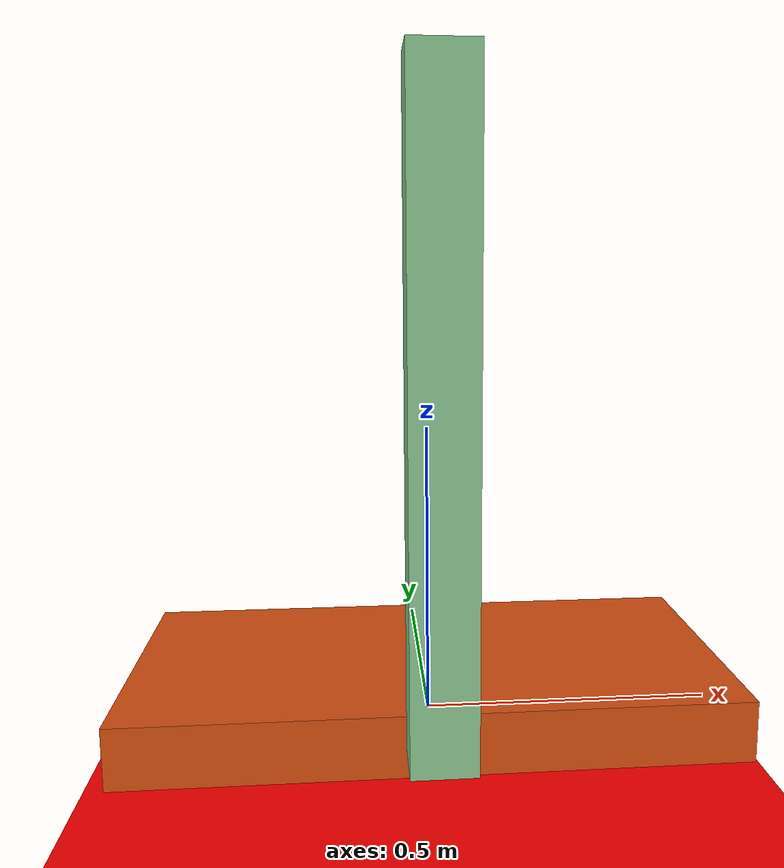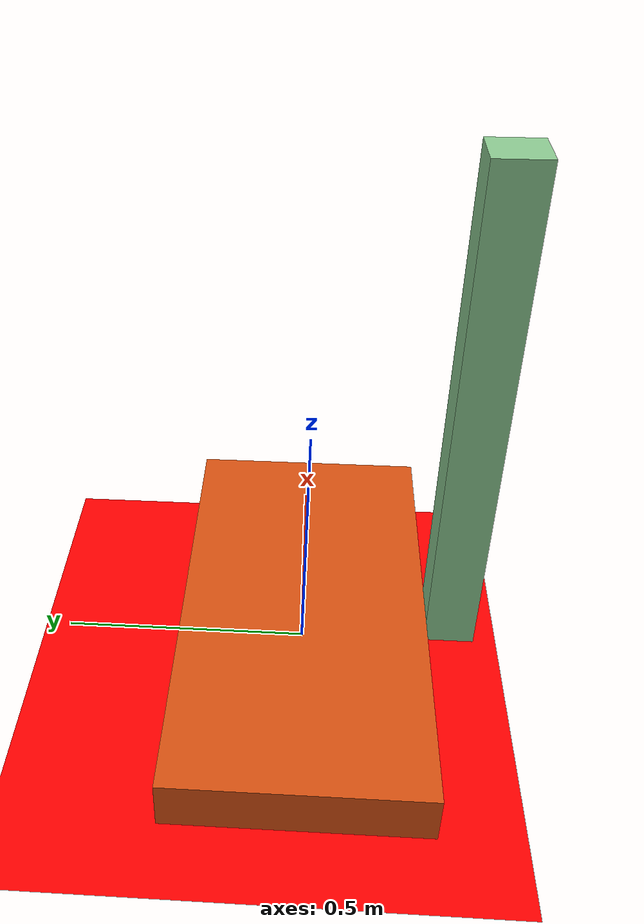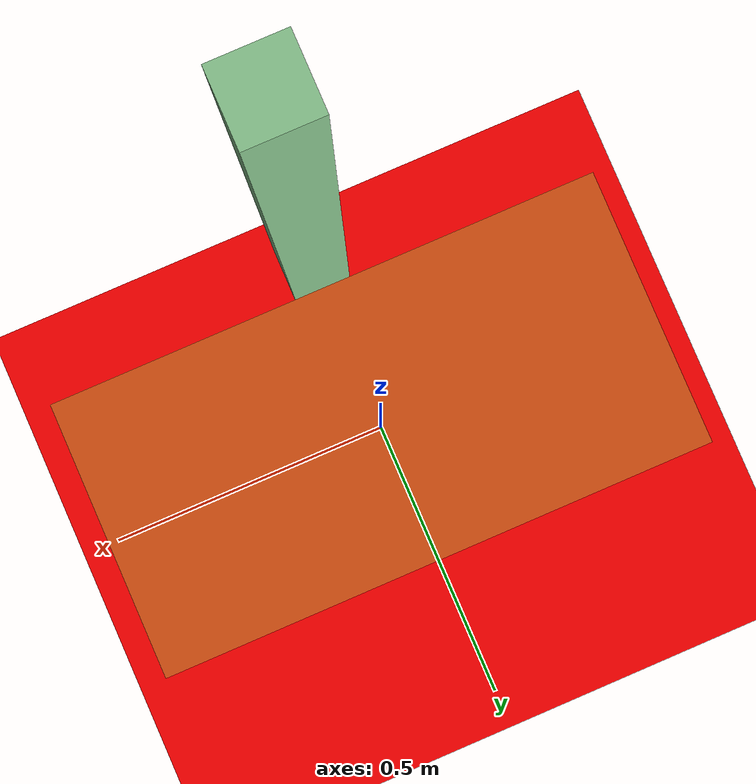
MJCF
<mujoco model="Cart Pole System">

    <default class="main">
        <geom rgba="1 0 0 1"/>
    </default>

    <visual>
        <global fovy="45"/>

    </visual>

    <option timestep='0.002' iterations="50" solver="PGS" collision="predefined">
        <flag energy="enable" fwdinv="enable"/>
    </option>

    <asset>
        <texture type="skybox" builtin="gradient" width="128" height="128" rgb1=".4 .6 .8" rgb2="0 0 0"/>

        <texture name="texplane" type="2d" builtin="checker" rgb1=".2 .3 .4" rgb2=".1 0.15 0.2"
            width="512" height="512"/>

        <material name='MatPlane' reflectance='0.5' texture="texplane" texrepeat="1 1" texuniform="true"/>
    </asset>

    <worldbody>

        <geom name='floor' pos='0 0 -0.1' size='100 1 0.1' type='plane' material="MatPlane" condim='3'/>

        <light mode='targetbodycom' target='cart' directional='false' diffuse='.8 .8 .8' specular='0.3 0.3 0.3' pos='0 0 4.0' dir='0 0 -1'/>

        <camera name='targeting' pos='1 1 2' mode='targetbodycom' target='cart'/>

        <body name='cart' pos='0 0 0.05'>

     		<joint name='cart_x' type='slide' pos='0 0 0' axis='1 0 0' limited='false' damping='0' armature='0' stiffness='0' ref='0'/>

     		<geom type='box' pos='0 0 0' size='0.5 0.25 0.05' mass='1000' rgba='0.85 0.32 0.07 1'/>

     		<body name='pole' pos='0 -0.3 0'  axisangle='0 -1 0 90'>

     			<joint name='pole_theta' type='hinge' pos='0 0 0' axis='0 -1 0' />

                <inertial pos='0.5 0 0' mass='100' diaginertia='0.0001 0.0001 0.0001'/>

     			<geom type='box' pos='0.5 0 0' size='0.5 0.05 0.05' rgba='0.55 0.79 0.57 1'/>

     		</body>

     	</body>

    </worldbody>

    <actuator>
    	<general name="cartForce" joint="cart_x"/>
   	</actuator>

</mujoco>
